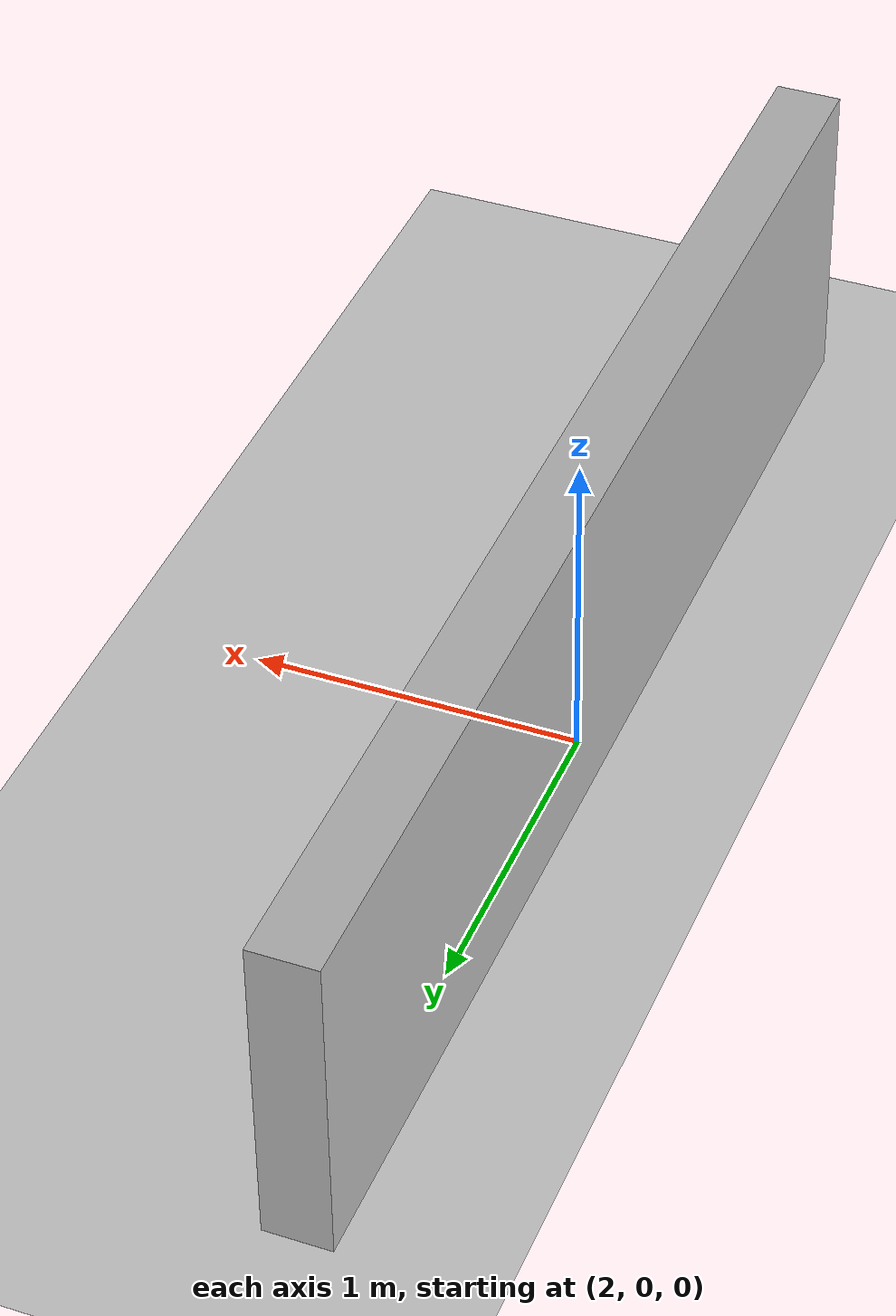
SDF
<?xml version="1.0" ?>

<sdf version="1.8">
  <world name="demo">
    <plugin
      filename="gz-sim-physics-system"
      name="gz::sim::systems::Physics">
    </plugin>
    <plugin
      filename="gz-sim-sensors-system"
      name="gz::sim::systems::Sensors">
      <render_engine>ogre2</render_engine>
    </plugin>
    <plugin
      filename="gz-sim-scene-broadcaster-system"
      name="gz::sim::systems::SceneBroadcaster">
    </plugin>
    <plugin
      filename="gz-sim-user-commands-system"
      name="gz::sim::systems::UserCommands">
    </plugin>

    <light name="sun" type="directional">
      <cast_shadows>true</cast_shadows>
      <pose>0 0 10 0 0 0</pose>
      <diffuse>0.8 0.8 0.8 1</diffuse>
      <specular>0.2 0.2 0.2 1</specular>
      <attenuation>
        <range>1000</range>
        <constant>0.9</constant>
        <linear>0.01</linear>
        <quadratic>0.001</quadratic>
      </attenuation>
      <direction>-0.5 0.1 -0.9</direction>
    </light>

    <model name="ground_plane">
      <static>true</static>
      <link name="link">
        <collision name="collision">
          <geometry>
            <plane>
              <normal>0 0 1</normal>
              <size>100 100</size>
            </plane>
          </geometry>
        </collision>
        <visual name="visual">
          <geometry>
            <plane>
              <normal>0 0 1</normal>
              <size>100 100</size>
            </plane>
          </geometry>
          <material>
            <ambient>0.8 0.8 0.8 1</ambient>
            <diffuse>0.8 0.8 0.8 1</diffuse>
            <specular>0.8 0.8 0.8 1</specular>
          </material>
        </visual>
      </link>
    </model>

    <model name="wall1">
      <pose>2 0 0.5 0 0 0</pose>
      <static>true</static>
      <link name="link">
        <visual name="visual">
          <geometry>
            <box>
              <size>0.2 4 1</size>
            </box>
          </geometry>
        </visual>
      </link>
    </model>
  </world>
</sdf>
